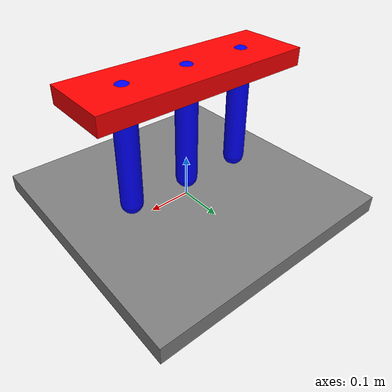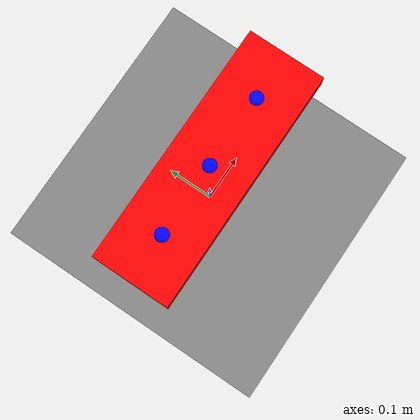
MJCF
<?xml version="1.0" encoding="UTF-8"?>

<mujoco model="closed_loop_test">

    <option gravity="0 0 0"
            timestep="0.002"/>

    <worldbody>

        <!-- BASE                           -->

        <body name="base">

            <geom type="box"
                  size="0.3 0.3 0.02"
                  rgba="0.5 0.5 0.5 1"/>

            <!-- BLUE LINK 1                -->

            <body name="blue1"
                  pos="-0.15 0 0.05">

                <joint name="q1"
                       type="hinge"
                       axis="0 1 0"/>

                <geom type="capsule"
                      fromto="0 0 0 0 0 0.25"
                      size="0.025"
                      rgba="0 0 1 1"/>

                <site name="blue1_end"
                      pos="0 0 0.25"
                      size="0.02"
                      rgba="0 1 0 1"/>

            </body>

            <!-- BLUE LINK 2                -->

            <body name="blue2"
                  pos="0 0 0.05">

                <joint name="q2"
                       type="hinge"
                       axis="0 1 0"/>

                <geom type="capsule"
                      fromto="0 0 0 0 0 0.25"
                      size="0.025"
                      rgba="0 0 1 1"/>

                <site name="blue2_end"
                      pos="0 0 0.25"
                      size="0.02"
                      rgba="0 1 0 1"/>

            </body>

            <!-- BLUE LINK 3                -->

            <body name="blue3"
                  pos="0.15 0 0.05">

                <joint name="q3"
                       type="hinge"
                       axis="0 1 0"/>

                <geom type="capsule"
                      fromto="0 0 0 0 0 0.25"
                      size="0.025"
                      rgba="0 0 1 1"/>

                <site name="blue3_end"
                      pos="0 0 0.25"
                      size="0.02"
                      rgba="0 1 0 1"/>

            </body>

        </body>

        <!-- COMMON TOP PLATE (top-level)   -->

        <body name="top_plate"
              pos="0 0 0.30">

            <freejoint/>

            <geom type="box"
                  size="0.25 0.08 0.02"
                  rgba="1 0 0 1"/>

            <site name="plate1"
                  pos="-0.15 0 0"
                  size="0.02"
                  rgba="1 1 0 1"/>

            <site name="plate2"
                  pos="0 0 0"
                  size="0.02"
                  rgba="1 1 0 1"/>

            <site name="plate3"
                  pos="0.15 0 0"
                  size="0.02"
                  rgba="1 1 0 1"/>

        </body>

    </worldbody>

    <!-- CLOSED LOOP CONSTRAINTS                         -->

    <equality>

        <connect
            name="connection1"
            site1="blue1_end"
            site2="plate1"/>

        <connect
            name="connection2"
            site1="blue2_end"
            site2="plate2"/>

        <connect
            name="connection3"
            site1="blue3_end"
            site2="plate3"/>

    </equality>

</mujoco>
